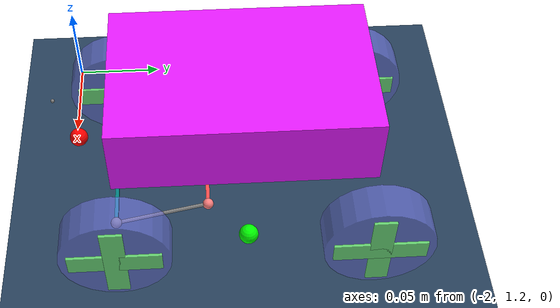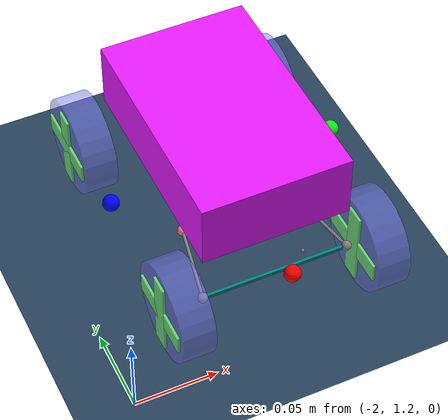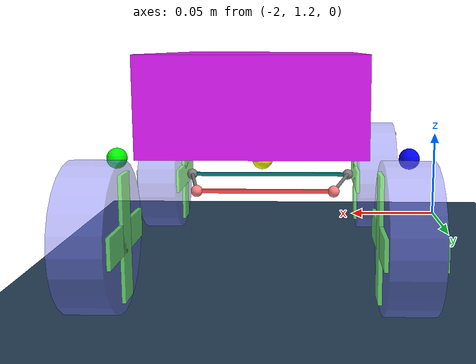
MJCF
<mujoco>
  <compiler autolimits="true"/>

  <asset>
    <texture name="grid" type="2d" builtin="checker" width="512" height="512" rgb1=".1 .2 .3" rgb2=".2 .3 .4"/>
    <material name="grid" texture="grid" texrepeat="1 1" texuniform="true" reflectance=".2"/>

  </asset>

  <default>
    <joint damping=".03" actuatorfrcrange="-0.5 0.5"/>
    <default class="wheel">
      <geom type="cylinder" size=".03 .01" rgba=".5 .5 1 0.5"/>
    </default>
    <default class="decor">
      <site type="box" rgba=".5 1 .5 0.8"/>
    </default>
  </default>

  <worldbody>

    <geom type="plane" size="30 30 .01" material="grid"/>
    <body name="car" pos="-1.9 1.3 .03" euler="0 0 270">
      <camera name="front_cam" mode="fixed" pos="0.1 0 0.2" euler="0 -50 270" fovy="120"/>

      <site name="camera_site" pos="0.1 0 0.05" euler="0 15 0" size="0.001"/>

      <freejoint/>
      <light name="top light" pos="0 0 2" mode="trackcom" diffuse=".4 .4 .4"/>
      <geom name="chasis" mass="20" type="box" size="0.07 0.045 0.02" pos="0 0 0.05" rgba="0.9 0.1 1 1"/>
      <body name="left wheel" pos="-.07 .06 0" zaxis="0 1 0">
        <joint name="left"/>
        <geom class="wheel"/>
        <site class="decor" size=".006 .025 .0115"/>
        <site class="decor" size=".025 .006 .0115"/>
      </body>
      <body name="right wheel" pos="-.07 -.06 0" zaxis="0 1 0">
        <joint name="right"/>
        <geom class="wheel"/>
        <site class="decor" size=".006 .025 .0115"/>
        <site class="decor" size=".025 .006 .0115"/>
      </body>

      <body name="front left" pos=".07 .06 0" zaxis="0 1 0">
        <joint name="front left" damping="1" type="hinge" range="-30 30" axis="0 1 0"/>

        <joint name="j3"/>
        <geom class="wheel"/>
        <site class="decor" size=".006 .025 .0115"/>
        <site class="decor" size=".025 .006 .0115"/>
      </body>
      <body name="front right " pos=".07 -.06 0" zaxis="0 1 0">
        <joint name="front right" damping="1" type="hinge" range="-30 30" axis="0 1 0"/>
        <joint name="j4"/>
        <geom class="wheel"/>
        <site class="decor" size=".006 .025 .0115"/>
        <site class="decor" size=".025 .006 .0115"/>
      </body>

      <body name="fixed" pos="0.07 0 0" zaxis="1 0 0">
        <geom name="g4" type="box" size="0.001 0.045 0.001" rgba="0 0.5 0.5 1"/>
        <site name="s0" size="0.003" pos="0 0.045 0"/>
        <site name="s1" size="0.003" pos="0 -0.045 0"/>

     </body>

      <body pos="0.02 0 0">
        <joint name="acker" pos="0 0 0" type="slide" axis="0 1 0" />
        <geom type="box" size="0.001 0.035 0.001" rgba="1 0.3 0.3 1" />
        <site name="s5" size="0.003" pos="0 -0.035 0" rgba="1 0.5 0.5 1"/>
        <site name="s6" size="0.003" pos="0 0.035 0" rgba="1 0.5 0.5 1"/>

      </body>
    <!-- Новый site для IMU -->
    <site name="imu" pos="0 0 0.02" size="0.005" rgba="1 1 0 1"/>
    <!-- Сенсоры расстояния / касания -->
    <site name="sensor_front" pos="0.09 0 0.02" size="0.005" rgba="1 0 0 1"/>
    <site name="sensor_left"  pos="0 0.07 0.02" size="0.005" rgba="0 1 0 1"/>
    <site name="sensor_right" pos="0 -0.07 0.02" size="0.005" rgba="0 0 1 1"/>

    </body>
  </worldbody>

  <tendon>

    <fixed name="4x4">
      <joint joint="j4" coef=".5"/>
      <joint joint="j3" coef=".5"/>
      <joint joint="left" coef=".5"/>
      <joint joint="right" coef=".5"/>
    </fixed>

    <fixed name="turn_acker">
      <joint joint="front right" coef="1"/>
      <joint joint="front left" coef="1"/>
      <joint joint="acker" coef="-1" />

    </fixed>
    <fixed name="turn">
      <joint joint="front right" coef="10"/>
      <joint joint="front left" coef="10"/>

    </fixed>

    <spatial  width=".001" stiffness="1000">
      <site site="s0"/>
      <site site="s6"/>
      <site site="s5"/>
      <site site="s1"/>
    </spatial>

  </tendon>

  <actuator>
    <motor name="4x4" tendon="4x4" ctrlrange="-100 100"/>

    <motor name="turn_acker" tendon="turn_acker" ctrlrange="-1 1"/>
    <motor name="turn" tendon="turn" ctrlrange="-1 1"/>

  </actuator>

  <sensor>
    <jointactuatorfrc name="right" joint="right"/>
    <jointactuatorfrc name="left" joint="left"/>

    <!-- Гироскоп -->
    <gyro name="gyro" site="imu"/>

    <!-- Акселерометр -->
    <accelerometer name="accel" site="imu"/>

    <!-- Лазерные дальномеры -->
    <rangefinder name="range_front" site="sensor_front"/>
    <rangefinder name="range_left" site="sensor_left"/>
    <rangefinder name="range_right" site="sensor_right"/>

    <!-- Сенсоры контакта (тач-сенсоры) -->
    <touch name="touch_front" site="sensor_front"/>
    <touch name="touch_left" site="sensor_left"/>
    <touch name="touch_right" site="sensor_right"/>

  </sensor>
</mujoco>
